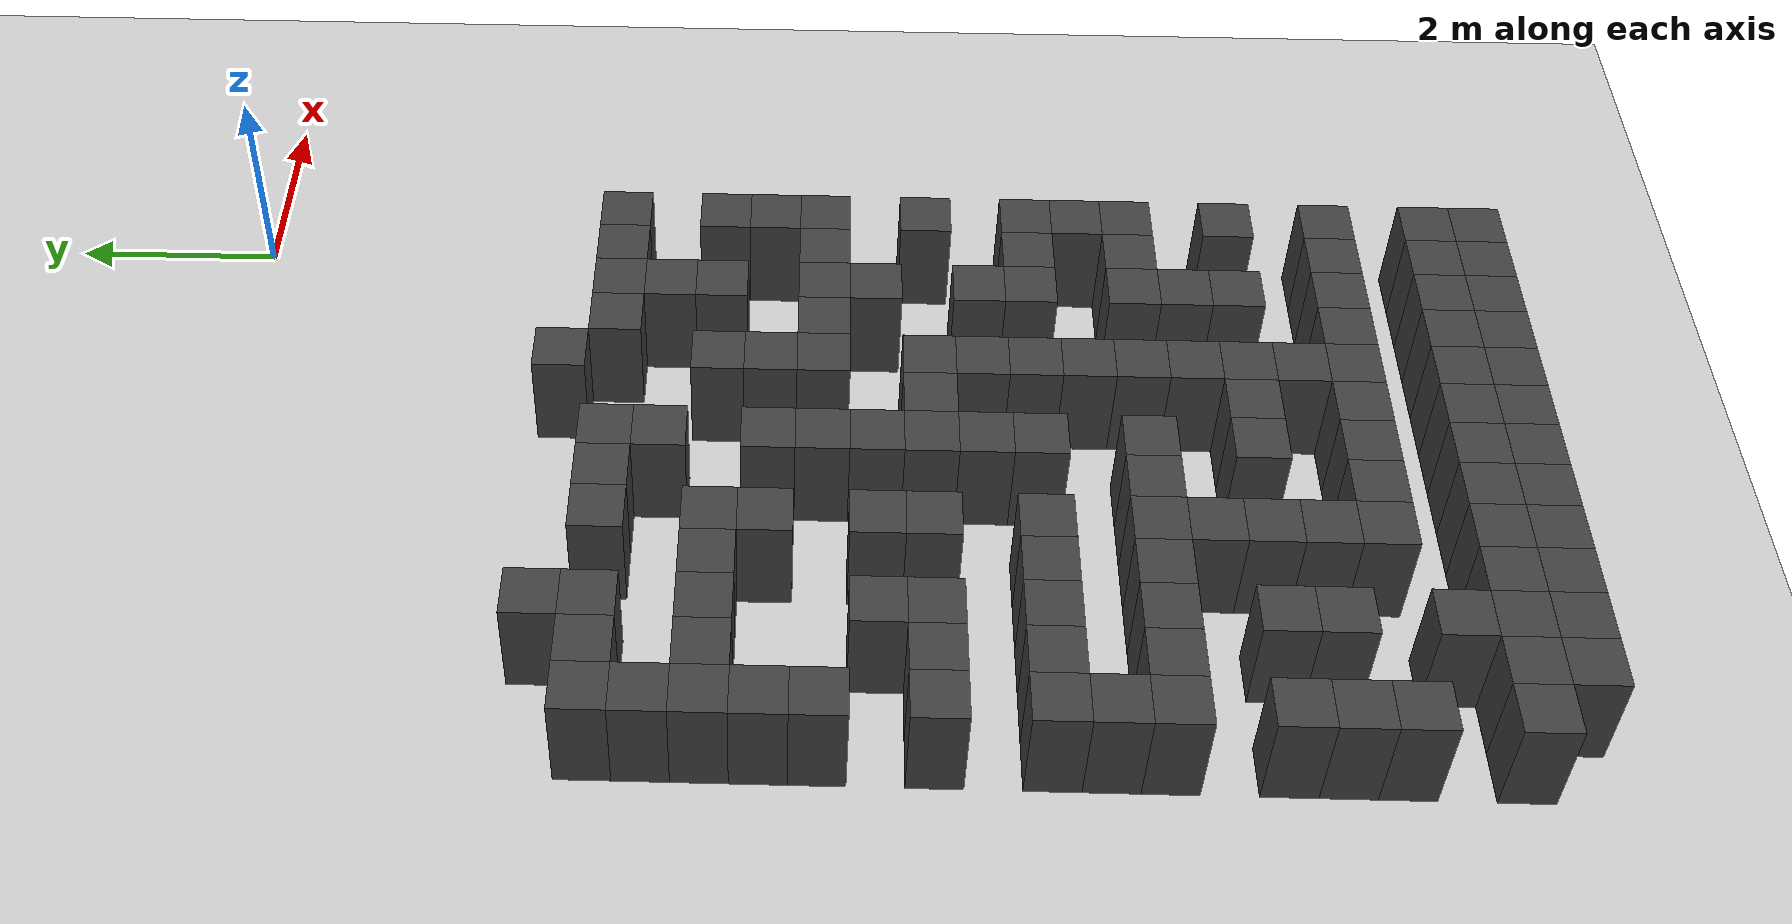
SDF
<sdf version="1.7">
 <world name="map_16668">
  <model name="ground_plane">
   <static>true</static>
   <link name="link">
    <collision name="collision">
     <geometry><plane><normal>0 0 1</normal><size>200 200</size></plane></geometry>
    </collision>
    <visual name="visual">
     <geometry><plane><normal>0 0 1</normal><size>200 200</size></plane></geometry>
     <material><ambient>0.8 0.8 0.8 1</ambient><diffuse>0.8 0.8 0.8 1</diffuse></material>
    </visual>
   </link>
  </model>
  <model name="maze_environment">
   <static>true</static>
   <link name="wall_756">
    <pose>-5.250 -3.250 0.500 0 0 0</pose>
    <collision name="col"><geometry><box><size>0.5 0.5 1.0</size></box></geometry></collision>
    <visual name="vis">
     <geometry><box><size>0.5 0.5 1.0</size></box></geometry>
     <material><ambient>0.15 0.15 0.15 1</ambient><diffuse>0.25 0.25 0.25 1</diffuse></material>
    </visual>
   </link>
   <link name="wall_757">
    <pose>-2.250 -3.250 0.500 0 0 0</pose>
    <collision name="col"><geometry><box><size>0.5 0.5 1.0</size></box></geometry></collision>
    <visual name="vis">
     <geometry><box><size>0.5 0.5 1.0</size></box></geometry>
     <material><ambient>0.15 0.15 0.15 1</ambient><diffuse>0.25 0.25 0.25 1</diffuse></material>
    </visual>
   </link>
   <link name="wall_771">
    <pose>-6.250 -3.750 0.500 0 0 0</pose>
    <collision name="col"><geometry><box><size>0.5 0.5 1.0</size></box></geometry></collision>
    <visual name="vis">
     <geometry><box><size>0.5 0.5 1.0</size></box></geometry>
     <material><ambient>0.15 0.15 0.15 1</ambient><diffuse>0.25 0.25 0.25 1</diffuse></material>
    </visual>
   </link>
   <link name="wall_772">
    <pose>-5.750 -3.750 0.500 0 0 0</pose>
    <collision name="col"><geometry><box><size>0.5 0.5 1.0</size></box></geometry></collision>
    <visual name="vis">
     <geometry><box><size>0.5 0.5 1.0</size></box></geometry>
     <material><ambient>0.15 0.15 0.15 1</ambient><diffuse>0.25 0.25 0.25 1</diffuse></material>
    </visual>
   </link>
   <link name="wall_773">
    <pose>-5.250 -3.750 0.500 0 0 0</pose>
    <collision name="col"><geometry><box><size>0.5 0.5 1.0</size></box></geometry></collision>
    <visual name="vis">
     <geometry><box><size>0.5 0.5 1.0</size></box></geometry>
     <material><ambient>0.15 0.15 0.15 1</ambient><diffuse>0.25 0.25 0.25 1</diffuse></material>
    </visual>
   </link>
   <link name="wall_774">
    <pose>-4.250 -3.750 0.500 0 0 0</pose>
    <collision name="col"><geometry><box><size>0.5 0.5 1.0</size></box></geometry></collision>
    <visual name="vis">
     <geometry><box><size>0.5 0.5 1.0</size></box></geometry>
     <material><ambient>0.15 0.15 0.15 1</ambient><diffuse>0.25 0.25 0.25 1</diffuse></material>
    </visual>
   </link>
   <link name="wall_775">
    <pose>-3.750 -3.750 0.500 0 0 0</pose>
    <collision name="col"><geometry><box><size>0.5 0.5 1.0</size></box></geometry></collision>
    <visual name="vis">
     <geometry><box><size>0.5 0.5 1.0</size></box></geometry>
     <material><ambient>0.15 0.15 0.15 1</ambient><diffuse>0.25 0.25 0.25 1</diffuse></material>
    </visual>
   </link>
   <link name="wall_776">
    <pose>-3.250 -3.750 0.500 0 0 0</pose>
    <collision name="col"><geometry><box><size>0.5 0.5 1.0</size></box></geometry></collision>
    <visual name="vis">
     <geometry><box><size>0.5 0.5 1.0</size></box></geometry>
     <material><ambient>0.15 0.15 0.15 1</ambient><diffuse>0.25 0.25 0.25 1</diffuse></material>
    </visual>
   </link>
   <link name="wall_777">
    <pose>-1.750 -3.750 0.500 0 0 0</pose>
    <collision name="col"><geometry><box><size>0.5 0.5 1.0</size></box></geometry></collision>
    <visual name="vis">
     <geometry><box><size>0.5 0.5 1.0</size></box></geometry>
     <material><ambient>0.15 0.15 0.15 1</ambient><diffuse>0.25 0.25 0.25 1</diffuse></material>
    </visual>
   </link>
   <link name="wall_778">
    <pose>-1.250 -3.750 0.500 0 0 0</pose>
    <collision name="col"><geometry><box><size>0.5 0.5 1.0</size></box></geometry></collision>
    <visual name="vis">
     <geometry><box><size>0.5 0.5 1.0</size></box></geometry>
     <material><ambient>0.15 0.15 0.15 1</ambient><diffuse>0.25 0.25 0.25 1</diffuse></material>
    </visual>
   </link>
   <link name="wall_779">
    <pose>-0.750 -3.750 0.500 0 0 0</pose>
    <collision name="col"><geometry><box><size>0.5 0.5 1.0</size></box></geometry></collision>
    <visual name="vis">
     <geometry><box><size>0.5 0.5 1.0</size></box></geometry>
     <material><ambient>0.15 0.15 0.15 1</ambient><diffuse>0.25 0.25 0.25 1</diffuse></material>
    </visual>
   </link>
   <link name="wall_780">
    <pose>-0.250 -3.750 0.500 0 0 0</pose>
    <collision name="col"><geometry><box><size>0.5 0.5 1.0</size></box></geometry></collision>
    <visual name="vis">
     <geometry><box><size>0.5 0.5 1.0</size></box></geometry>
     <material><ambient>0.15 0.15 0.15 1</ambient><diffuse>0.25 0.25 0.25 1</diffuse></material>
    </visual>
   </link>
   <link name="wall_804">
    <pose>-6.250 -4.250 0.500 0 0 0</pose>
    <collision name="col"><geometry><box><size>0.5 0.5 1.0</size></box></geometry></collision>
    <visual name="vis">
     <geometry><box><size>0.5 0.5 1.0</size></box></geometry>
     <material><ambient>0.15 0.15 0.15 1</ambient><diffuse>0.25 0.25 0.25 1</diffuse></material>
    </visual>
   </link>
   <link name="wall_805">
    <pose>-3.250 -4.250 0.500 0 0 0</pose>
    <collision name="col"><geometry><box><size>0.5 0.5 1.0</size></box></geometry></collision>
    <visual name="vis">
     <geometry><box><size>0.5 0.5 1.0</size></box></geometry>
     <material><ambient>0.15 0.15 0.15 1</ambient><diffuse>0.25 0.25 0.25 1</diffuse></material>
    </visual>
   </link>
   <link name="wall_806">
    <pose>-1.250 -4.250 0.500 0 0 0</pose>
    <collision name="col"><geometry><box><size>0.5 0.5 1.0</size></box></geometry></collision>
    <visual name="vis">
     <geometry><box><size>0.5 0.5 1.0</size></box></geometry>
     <material><ambient>0.15 0.15 0.15 1</ambient><diffuse>0.25 0.25 0.25 1</diffuse></material>
    </visual>
   </link>
   <link name="wall_822">
    <pose>-6.250 -4.750 0.500 0 0 0</pose>
    <collision name="col"><geometry><box><size>0.5 0.5 1.0</size></box></geometry></collision>
    <visual name="vis">
     <geometry><box><size>0.5 0.5 1.0</size></box></geometry>
     <material><ambient>0.15 0.15 0.15 1</ambient><diffuse>0.25 0.25 0.25 1</diffuse></material>
    </visual>
   </link>
   <link name="wall_823">
    <pose>-5.750 -4.750 0.500 0 0 0</pose>
    <collision name="col"><geometry><box><size>0.5 0.5 1.0</size></box></geometry></collision>
    <visual name="vis">
     <geometry><box><size>0.5 0.5 1.0</size></box></geometry>
     <material><ambient>0.15 0.15 0.15 1</ambient><diffuse>0.25 0.25 0.25 1</diffuse></material>
    </visual>
   </link>
   <link name="wall_824">
    <pose>-5.250 -4.750 0.500 0 0 0</pose>
    <collision name="col"><geometry><box><size>0.5 0.5 1.0</size></box></geometry></collision>
    <visual name="vis">
     <geometry><box><size>0.5 0.5 1.0</size></box></geometry>
     <material><ambient>0.15 0.15 0.15 1</ambient><diffuse>0.25 0.25 0.25 1</diffuse></material>
    </visual>
   </link>
   <link name="wall_825">
    <pose>-4.750 -4.750 0.500 0 0 0</pose>
    <collision name="col"><geometry><box><size>0.5 0.5 1.0</size></box></geometry></collision>
    <visual name="vis">
     <geometry><box><size>0.5 0.5 1.0</size></box></geometry>
     <material><ambient>0.15 0.15 0.15 1</ambient><diffuse>0.25 0.25 0.25 1</diffuse></material>
    </visual>
   </link>
   <link name="wall_826">
    <pose>-4.250 -4.750 0.500 0 0 0</pose>
    <collision name="col"><geometry><box><size>0.5 0.5 1.0</size></box></geometry></collision>
    <visual name="vis">
     <geometry><box><size>0.5 0.5 1.0</size></box></geometry>
     <material><ambient>0.15 0.15 0.15 1</ambient><diffuse>0.25 0.25 0.25 1</diffuse></material>
    </visual>
   </link>
   <link name="wall_827">
    <pose>-2.250 -4.750 0.500 0 0 0</pose>
    <collision name="col"><geometry><box><size>0.5 0.5 1.0</size></box></geometry></collision>
    <visual name="vis">
     <geometry><box><size>0.5 0.5 1.0</size></box></geometry>
     <material><ambient>0.15 0.15 0.15 1</ambient><diffuse>0.25 0.25 0.25 1</diffuse></material>
    </visual>
   </link>
   <link name="wall_828">
    <pose>-1.250 -4.750 0.500 0 0 0</pose>
    <collision name="col"><geometry><box><size>0.5 0.5 1.0</size></box></geometry></collision>
    <visual name="vis">
     <geometry><box><size>0.5 0.5 1.0</size></box></geometry>
     <material><ambient>0.15 0.15 0.15 1</ambient><diffuse>0.25 0.25 0.25 1</diffuse></material>
    </visual>
   </link>
   <link name="wall_829">
    <pose>-0.250 -4.750 0.500 0 0 0</pose>
    <collision name="col"><geometry><box><size>0.5 0.5 1.0</size></box></geometry></collision>
    <visual name="vis">
     <geometry><box><size>0.5 0.5 1.0</size></box></geometry>
     <material><ambient>0.15 0.15 0.15 1</ambient><diffuse>0.25 0.25 0.25 1</diffuse></material>
    </visual>
   </link>
   <link name="wall_848">
    <pose>-6.250 -5.250 0.500 0 0 0</pose>
    <collision name="col"><geometry><box><size>0.5 0.5 1.0</size></box></geometry></collision>
    <visual name="vis">
     <geometry><box><size>0.5 0.5 1.0</size></box></geometry>
     <material><ambient>0.15 0.15 0.15 1</ambient><diffuse>0.25 0.25 0.25 1</diffuse></material>
    </visual>
   </link>
   <link name="wall_849">
    <pose>-4.250 -5.250 0.500 0 0 0</pose>
    <collision name="col"><geometry><box><size>0.5 0.5 1.0</size></box></geometry></collision>
    <visual name="vis">
     <geometry><box><size>0.5 0.5 1.0</size></box></geometry>
     <material><ambient>0.15 0.15 0.15 1</ambient><diffuse>0.25 0.25 0.25 1</diffuse></material>
    </visual>
   </link>
   <link name="wall_850">
    <pose>-3.250 -5.250 0.500 0 0 0</pose>
    <collision name="col"><geometry><box><size>0.5 0.5 1.0</size></box></geometry></collision>
    <visual name="vis">
     <geometry><box><size>0.5 0.5 1.0</size></box></geometry>
     <material><ambient>0.15 0.15 0.15 1</ambient><diffuse>0.25 0.25 0.25 1</diffuse></material>
    </visual>
   </link>
   <link name="wall_851">
    <pose>-2.250 -5.250 0.500 0 0 0</pose>
    <collision name="col"><geometry><box><size>0.5 0.5 1.0</size></box></geometry></collision>
    <visual name="vis">
     <geometry><box><size>0.5 0.5 1.0</size></box></geometry>
     <material><ambient>0.15 0.15 0.15 1</ambient><diffuse>0.25 0.25 0.25 1</diffuse></material>
    </visual>
   </link>
   <link name="wall_852">
    <pose>-0.250 -5.250 0.500 0 0 0</pose>
    <collision name="col"><geometry><box><size>0.5 0.5 1.0</size></box></geometry></collision>
    <visual name="vis">
     <geometry><box><size>0.5 0.5 1.0</size></box></geometry>
     <material><ambient>0.15 0.15 0.15 1</ambient><diffuse>0.25 0.25 0.25 1</diffuse></material>
    </visual>
   </link>
   <link name="wall_874">
    <pose>-6.250 -5.750 0.500 0 0 0</pose>
    <collision name="col"><geometry><box><size>0.5 0.5 1.0</size></box></geometry></collision>
    <visual name="vis">
     <geometry><box><size>0.5 0.5 1.0</size></box></geometry>
     <material><ambient>0.15 0.15 0.15 1</ambient><diffuse>0.25 0.25 0.25 1</diffuse></material>
    </visual>
   </link>
   <link name="wall_875">
    <pose>-3.250 -5.750 0.500 0 0 0</pose>
    <collision name="col"><geometry><box><size>0.5 0.5 1.0</size></box></geometry></collision>
    <visual name="vis">
     <geometry><box><size>0.5 0.5 1.0</size></box></geometry>
     <material><ambient>0.15 0.15 0.15 1</ambient><diffuse>0.25 0.25 0.25 1</diffuse></material>
    </visual>
   </link>
   <link name="wall_876">
    <pose>-2.250 -5.750 0.500 0 0 0</pose>
    <collision name="col"><geometry><box><size>0.5 0.5 1.0</size></box></geometry></collision>
    <visual name="vis">
     <geometry><box><size>0.5 0.5 1.0</size></box></geometry>
     <material><ambient>0.15 0.15 0.15 1</ambient><diffuse>0.25 0.25 0.25 1</diffuse></material>
    </visual>
   </link>
   <link name="wall_877">
    <pose>-1.750 -5.750 0.500 0 0 0</pose>
    <collision name="col"><geometry><box><size>0.5 0.5 1.0</size></box></geometry></collision>
    <visual name="vis">
     <geometry><box><size>0.5 0.5 1.0</size></box></geometry>
     <material><ambient>0.15 0.15 0.15 1</ambient><diffuse>0.25 0.25 0.25 1</diffuse></material>
    </visual>
   </link>
   <link name="wall_878">
    <pose>-1.250 -5.750 0.500 0 0 0</pose>
    <collision name="col"><geometry><box><size>0.5 0.5 1.0</size></box></geometry></collision>
    <visual name="vis">
     <geometry><box><size>0.5 0.5 1.0</size></box></geometry>
     <material><ambient>0.15 0.15 0.15 1</ambient><diffuse>0.25 0.25 0.25 1</diffuse></material>
    </visual>
   </link>
   <link name="wall_879">
    <pose>-0.750 -5.750 0.500 0 0 0</pose>
    <collision name="col"><geometry><box><size>0.5 0.5 1.0</size></box></geometry></collision>
    <visual name="vis">
     <geometry><box><size>0.5 0.5 1.0</size></box></geometry>
     <material><ambient>0.15 0.15 0.15 1</ambient><diffuse>0.25 0.25 0.25 1</diffuse></material>
    </visual>
   </link>
   <link name="wall_880">
    <pose>-0.250 -5.750 0.500 0 0 0</pose>
    <collision name="col"><geometry><box><size>0.5 0.5 1.0</size></box></geometry></collision>
    <visual name="vis">
     <geometry><box><size>0.5 0.5 1.0</size></box></geometry>
     <material><ambient>0.15 0.15 0.15 1</ambient><diffuse>0.25 0.25 0.25 1</diffuse></material>
    </visual>
   </link>
   <link name="wall_897">
    <pose>-5.250 -6.250 0.500 0 0 0</pose>
    <collision name="col"><geometry><box><size>0.5 0.5 1.0</size></box></geometry></collision>
    <visual name="vis">
     <geometry><box><size>0.5 0.5 1.0</size></box></geometry>
     <material><ambient>0.15 0.15 0.15 1</ambient><diffuse>0.25 0.25 0.25 1</diffuse></material>
    </visual>
   </link>
   <link name="wall_898">
    <pose>-4.250 -6.250 0.500 0 0 0</pose>
    <collision name="col"><geometry><box><size>0.5 0.5 1.0</size></box></geometry></collision>
    <visual name="vis">
     <geometry><box><size>0.5 0.5 1.0</size></box></geometry>
     <material><ambient>0.15 0.15 0.15 1</ambient><diffuse>0.25 0.25 0.25 1</diffuse></material>
    </visual>
   </link>
   <link name="wall_899">
    <pose>-3.250 -6.250 0.500 0 0 0</pose>
    <collision name="col"><geometry><box><size>0.5 0.5 1.0</size></box></geometry></collision>
    <visual name="vis">
     <geometry><box><size>0.5 0.5 1.0</size></box></geometry>
     <material><ambient>0.15 0.15 0.15 1</ambient><diffuse>0.25 0.25 0.25 1</diffuse></material>
    </visual>
   </link>
   <link name="wall_900">
    <pose>-1.250 -6.250 0.500 0 0 0</pose>
    <collision name="col"><geometry><box><size>0.5 0.5 1.0</size></box></geometry></collision>
    <visual name="vis">
     <geometry><box><size>0.5 0.5 1.0</size></box></geometry>
     <material><ambient>0.15 0.15 0.15 1</ambient><diffuse>0.25 0.25 0.25 1</diffuse></material>
    </visual>
   </link>
   <link name="wall_919">
    <pose>-6.250 -6.750 0.500 0 0 0</pose>
    <collision name="col"><geometry><box><size>0.5 0.5 1.0</size></box></geometry></collision>
    <visual name="vis">
     <geometry><box><size>0.5 0.5 1.0</size></box></geometry>
     <material><ambient>0.15 0.15 0.15 1</ambient><diffuse>0.25 0.25 0.25 1</diffuse></material>
    </visual>
   </link>
   <link name="wall_920">
    <pose>-5.750 -6.750 0.500 0 0 0</pose>
    <collision name="col"><geometry><box><size>0.5 0.5 1.0</size></box></geometry></collision>
    <visual name="vis">
     <geometry><box><size>0.5 0.5 1.0</size></box></geometry>
     <material><ambient>0.15 0.15 0.15 1</ambient><diffuse>0.25 0.25 0.25 1</diffuse></material>
    </visual>
   </link>
   <link name="wall_921">
    <pose>-5.250 -6.750 0.500 0 0 0</pose>
    <collision name="col"><geometry><box><size>0.5 0.5 1.0</size></box></geometry></collision>
    <visual name="vis">
     <geometry><box><size>0.5 0.5 1.0</size></box></geometry>
     <material><ambient>0.15 0.15 0.15 1</ambient><diffuse>0.25 0.25 0.25 1</diffuse></material>
    </visual>
   </link>
   <link name="wall_922">
    <pose>-4.250 -6.750 0.500 0 0 0</pose>
    <collision name="col"><geometry><box><size>0.5 0.5 1.0</size></box></geometry></collision>
    <visual name="vis">
     <geometry><box><size>0.5 0.5 1.0</size></box></geometry>
     <material><ambient>0.15 0.15 0.15 1</ambient><diffuse>0.25 0.25 0.25 1</diffuse></material>
    </visual>
   </link>
   <link name="wall_923">
    <pose>-3.250 -6.750 0.500 0 0 0</pose>
    <collision name="col"><geometry><box><size>0.5 0.5 1.0</size></box></geometry></collision>
    <visual name="vis">
     <geometry><box><size>0.5 0.5 1.0</size></box></geometry>
     <material><ambient>0.15 0.15 0.15 1</ambient><diffuse>0.25 0.25 0.25 1</diffuse></material>
    </visual>
   </link>
   <link name="wall_924">
    <pose>-2.750 -6.750 0.500 0 0 0</pose>
    <collision name="col"><geometry><box><size>0.5 0.5 1.0</size></box></geometry></collision>
    <visual name="vis">
     <geometry><box><size>0.5 0.5 1.0</size></box></geometry>
     <material><ambient>0.15 0.15 0.15 1</ambient><diffuse>0.25 0.25 0.25 1</diffuse></material>
    </visual>
   </link>
   <link name="wall_925">
    <pose>-2.250 -6.750 0.500 0 0 0</pose>
    <collision name="col"><geometry><box><size>0.5 0.5 1.0</size></box></geometry></collision>
    <visual name="vis">
     <geometry><box><size>0.5 0.5 1.0</size></box></geometry>
     <material><ambient>0.15 0.15 0.15 1</ambient><diffuse>0.25 0.25 0.25 1</diffuse></material>
    </visual>
   </link>
   <link name="wall_926">
    <pose>-0.250 -6.750 0.500 0 0 0</pose>
    <collision name="col"><geometry><box><size>0.5 0.5 1.0</size></box></geometry></collision>
    <visual name="vis">
     <geometry><box><size>0.5 0.5 1.0</size></box></geometry>
     <material><ambient>0.15 0.15 0.15 1</ambient><diffuse>0.25 0.25 0.25 1</diffuse></material>
    </visual>
   </link>
   <link name="wall_945">
    <pose>-3.250 -7.250 0.500 0 0 0</pose>
    <collision name="col"><geometry><box><size>0.5 0.5 1.0</size></box></geometry></collision>
    <visual name="vis">
     <geometry><box><size>0.5 0.5 1.0</size></box></geometry>
     <material><ambient>0.15 0.15 0.15 1</ambient><diffuse>0.25 0.25 0.25 1</diffuse></material>
    </visual>
   </link>
   <link name="wall_946">
    <pose>-2.250 -7.250 0.500 0 0 0</pose>
    <collision name="col"><geometry><box><size>0.5 0.5 1.0</size></box></geometry></collision>
    <visual name="vis">
     <geometry><box><size>0.5 0.5 1.0</size></box></geometry>
     <material><ambient>0.15 0.15 0.15 1</ambient><diffuse>0.25 0.25 0.25 1</diffuse></material>
    </visual>
   </link>
   <link name="wall_947">
    <pose>-1.250 -7.250 0.500 0 0 0</pose>
    <collision name="col"><geometry><box><size>0.5 0.5 1.0</size></box></geometry></collision>
    <visual name="vis">
     <geometry><box><size>0.5 0.5 1.0</size></box></geometry>
     <material><ambient>0.15 0.15 0.15 1</ambient><diffuse>0.25 0.25 0.25 1</diffuse></material>
    </visual>
   </link>
   <link name="wall_962">
    <pose>-6.250 -7.750 0.500 0 0 0</pose>
    <collision name="col"><geometry><box><size>0.5 0.5 1.0</size></box></geometry></collision>
    <visual name="vis">
     <geometry><box><size>0.5 0.5 1.0</size></box></geometry>
     <material><ambient>0.15 0.15 0.15 1</ambient><diffuse>0.25 0.25 0.25 1</diffuse></material>
    </visual>
   </link>
   <link name="wall_963">
    <pose>-5.750 -7.750 0.500 0 0 0</pose>
    <collision name="col"><geometry><box><size>0.5 0.5 1.0</size></box></geometry></collision>
    <visual name="vis">
     <geometry><box><size>0.5 0.5 1.0</size></box></geometry>
     <material><ambient>0.15 0.15 0.15 1</ambient><diffuse>0.25 0.25 0.25 1</diffuse></material>
    </visual>
   </link>
   <link name="wall_964">
    <pose>-5.250 -7.750 0.500 0 0 0</pose>
    <collision name="col"><geometry><box><size>0.5 0.5 1.0</size></box></geometry></collision>
    <visual name="vis">
     <geometry><box><size>0.5 0.5 1.0</size></box></geometry>
     <material><ambient>0.15 0.15 0.15 1</ambient><diffuse>0.25 0.25 0.25 1</diffuse></material>
    </visual>
   </link>
   <link name="wall_965">
    <pose>-4.750 -7.750 0.500 0 0 0</pose>
    <collision name="col"><geometry><box><size>0.5 0.5 1.0</size></box></geometry></collision>
    <visual name="vis">
     <geometry><box><size>0.5 0.5 1.0</size></box></geometry>
     <material><ambient>0.15 0.15 0.15 1</ambient><diffuse>0.25 0.25 0.25 1</diffuse></material>
    </visual>
   </link>
   <link name="wall_966">
    <pose>-4.250 -7.750 0.500 0 0 0</pose>
    <collision name="col"><geometry><box><size>0.5 0.5 1.0</size></box></geometry></collision>
    <visual name="vis">
     <geometry><box><size>0.5 0.5 1.0</size></box></geometry>
     <material><ambient>0.15 0.15 0.15 1</ambient><diffuse>0.25 0.25 0.25 1</diffuse></material>
    </visual>
   </link>
   <link name="wall_967">
    <pose>-3.250 -7.750 0.500 0 0 0</pose>
    <collision name="col"><geometry><box><size>0.5 0.5 1.0</size></box></geometry></collision>
    <visual name="vis">
     <geometry><box><size>0.5 0.5 1.0</size></box></geometry>
     <material><ambient>0.15 0.15 0.15 1</ambient><diffuse>0.25 0.25 0.25 1</diffuse></material>
    </visual>
   </link>
   <link name="wall_968">
    <pose>-2.250 -7.750 0.500 0 0 0</pose>
    <collision name="col"><geometry><box><size>0.5 0.5 1.0</size></box></geometry></collision>
    <visual name="vis">
     <geometry><box><size>0.5 0.5 1.0</size></box></geometry>
     <material><ambient>0.15 0.15 0.15 1</ambient><diffuse>0.25 0.25 0.25 1</diffuse></material>
    </visual>
   </link>
   <link name="wall_969">
    <pose>-1.250 -7.750 0.500 0 0 0</pose>
    <collision name="col"><geometry><box><size>0.5 0.5 1.0</size></box></geometry></collision>
    <visual name="vis">
     <geometry><box><size>0.5 0.5 1.0</size></box></geometry>
     <material><ambient>0.15 0.15 0.15 1</ambient><diffuse>0.25 0.25 0.25 1</diffuse></material>
    </visual>
   </link>
   <link name="wall_970">
    <pose>-0.750 -7.750 0.500 0 0 0</pose>
    <collision name="col"><geometry><box><size>0.5 0.5 1.0</size></box></geometry></collision>
    <visual name="vis">
     <geometry><box><size>0.5 0.5 1.0</size></box></geometry>
     <material><ambient>0.15 0.15 0.15 1</ambient><diffuse>0.25 0.25 0.25 1</diffuse></material>
    </visual>
   </link>
   <link name="wall_971">
    <pose>-0.250 -7.750 0.500 0 0 0</pose>
    <collision name="col"><geometry><box><size>0.5 0.5 1.0</size></box></geometry></collision>
    <visual name="vis">
     <geometry><box><size>0.5 0.5 1.0</size></box></geometry>
     <material><ambient>0.15 0.15 0.15 1</ambient><diffuse>0.25 0.25 0.25 1</diffuse></material>
    </visual>
   </link>
   <link name="wall_996">
    <pose>-6.250 -8.250 0.500 0 0 0</pose>
    <collision name="col"><geometry><box><size>0.5 0.5 1.0</size></box></geometry></collision>
    <visual name="vis">
     <geometry><box><size>0.5 0.5 1.0</size></box></geometry>
     <material><ambient>0.15 0.15 0.15 1</ambient><diffuse>0.25 0.25 0.25 1</diffuse></material>
    </visual>
   </link>
   <link name="wall_997">
    <pose>-2.250 -8.250 0.500 0 0 0</pose>
    <collision name="col"><geometry><box><size>0.5 0.5 1.0</size></box></geometry></collision>
    <visual name="vis">
     <geometry><box><size>0.5 0.5 1.0</size></box></geometry>
     <material><ambient>0.15 0.15 0.15 1</ambient><diffuse>0.25 0.25 0.25 1</diffuse></material>
    </visual>
   </link>
   <link name="wall_998">
    <pose>-0.250 -8.250 0.500 0 0 0</pose>
    <collision name="col"><geometry><box><size>0.5 0.5 1.0</size></box></geometry></collision>
    <visual name="vis">
     <geometry><box><size>0.5 0.5 1.0</size></box></geometry>
     <material><ambient>0.15 0.15 0.15 1</ambient><diffuse>0.25 0.25 0.25 1</diffuse></material>
    </visual>
   </link>
   <link name="wall_1011">
    <pose>-6.250 -8.750 0.500 0 0 0</pose>
    <collision name="col"><geometry><box><size>0.5 0.5 1.0</size></box></geometry></collision>
    <visual name="vis">
     <geometry><box><size>0.5 0.5 1.0</size></box></geometry>
     <material><ambient>0.15 0.15 0.15 1</ambient><diffuse>0.25 0.25 0.25 1</diffuse></material>
    </visual>
   </link>
   <link name="wall_1012">
    <pose>-5.750 -8.750 0.500 0 0 0</pose>
    <collision name="col"><geometry><box><size>0.5 0.5 1.0</size></box></geometry></collision>
    <visual name="vis">
     <geometry><box><size>0.5 0.5 1.0</size></box></geometry>
     <material><ambient>0.15 0.15 0.15 1</ambient><diffuse>0.25 0.25 0.25 1</diffuse></material>
    </visual>
   </link>
   <link name="wall_1013">
    <pose>-5.250 -8.750 0.500 0 0 0</pose>
    <collision name="col"><geometry><box><size>0.5 0.5 1.0</size></box></geometry></collision>
    <visual name="vis">
     <geometry><box><size>0.5 0.5 1.0</size></box></geometry>
     <material><ambient>0.15 0.15 0.15 1</ambient><diffuse>0.25 0.25 0.25 1</diffuse></material>
    </visual>
   </link>
   <link name="wall_1014">
    <pose>-4.750 -8.750 0.500 0 0 0</pose>
    <collision name="col"><geometry><box><size>0.5 0.5 1.0</size></box></geometry></collision>
    <visual name="vis">
     <geometry><box><size>0.5 0.5 1.0</size></box></geometry>
     <material><ambient>0.15 0.15 0.15 1</ambient><diffuse>0.25 0.25 0.25 1</diffuse></material>
    </visual>
   </link>
   <link name="wall_1015">
    <pose>-4.250 -8.750 0.500 0 0 0</pose>
    <collision name="col"><geometry><box><size>0.5 0.5 1.0</size></box></geometry></collision>
    <visual name="vis">
     <geometry><box><size>0.5 0.5 1.0</size></box></geometry>
     <material><ambient>0.15 0.15 0.15 1</ambient><diffuse>0.25 0.25 0.25 1</diffuse></material>
    </visual>
   </link>
   <link name="wall_1016">
    <pose>-3.750 -8.750 0.500 0 0 0</pose>
    <collision name="col"><geometry><box><size>0.5 0.5 1.0</size></box></geometry></collision>
    <visual name="vis">
     <geometry><box><size>0.5 0.5 1.0</size></box></geometry>
     <material><ambient>0.15 0.15 0.15 1</ambient><diffuse>0.25 0.25 0.25 1</diffuse></material>
    </visual>
   </link>
   <link name="wall_1017">
    <pose>-3.250 -8.750 0.500 0 0 0</pose>
    <collision name="col"><geometry><box><size>0.5 0.5 1.0</size></box></geometry></collision>
    <visual name="vis">
     <geometry><box><size>0.5 0.5 1.0</size></box></geometry>
     <material><ambient>0.15 0.15 0.15 1</ambient><diffuse>0.25 0.25 0.25 1</diffuse></material>
    </visual>
   </link>
   <link name="wall_1018">
    <pose>-2.250 -8.750 0.500 0 0 0</pose>
    <collision name="col"><geometry><box><size>0.5 0.5 1.0</size></box></geometry></collision>
    <visual name="vis">
     <geometry><box><size>0.5 0.5 1.0</size></box></geometry>
     <material><ambient>0.15 0.15 0.15 1</ambient><diffuse>0.25 0.25 0.25 1</diffuse></material>
    </visual>
   </link>
   <link name="wall_1019">
    <pose>-1.250 -8.750 0.500 0 0 0</pose>
    <collision name="col"><geometry><box><size>0.5 0.5 1.0</size></box></geometry></collision>
    <visual name="vis">
     <geometry><box><size>0.5 0.5 1.0</size></box></geometry>
     <material><ambient>0.15 0.15 0.15 1</ambient><diffuse>0.25 0.25 0.25 1</diffuse></material>
    </visual>
   </link>
   <link name="wall_1020">
    <pose>-0.750 -8.750 0.500 0 0 0</pose>
    <collision name="col"><geometry><box><size>0.5 0.5 1.0</size></box></geometry></collision>
    <visual name="vis">
     <geometry><box><size>0.5 0.5 1.0</size></box></geometry>
     <material><ambient>0.15 0.15 0.15 1</ambient><diffuse>0.25 0.25 0.25 1</diffuse></material>
    </visual>
   </link>
   <link name="wall_1021">
    <pose>-0.250 -8.750 0.500 0 0 0</pose>
    <collision name="col"><geometry><box><size>0.5 0.5 1.0</size></box></geometry></collision>
    <visual name="vis">
     <geometry><box><size>0.5 0.5 1.0</size></box></geometry>
     <material><ambient>0.15 0.15 0.15 1</ambient><diffuse>0.25 0.25 0.25 1</diffuse></material>
    </visual>
   </link>
   <link name="wall_1044">
    <pose>-4.250 -9.250 0.500 0 0 0</pose>
    <collision name="col"><geometry><box><size>0.5 0.5 1.0</size></box></geometry></collision>
    <visual name="vis">
     <geometry><box><size>0.5 0.5 1.0</size></box></geometry>
     <material><ambient>0.15 0.15 0.15 1</ambient><diffuse>0.25 0.25 0.25 1</diffuse></material>
    </visual>
   </link>
   <link name="wall_1045">
    <pose>-2.250 -9.250 0.500 0 0 0</pose>
    <collision name="col"><geometry><box><size>0.5 0.5 1.0</size></box></geometry></collision>
    <visual name="vis">
     <geometry><box><size>0.5 0.5 1.0</size></box></geometry>
     <material><ambient>0.15 0.15 0.15 1</ambient><diffuse>0.25 0.25 0.25 1</diffuse></material>
    </visual>
   </link>
   <link name="wall_1046">
    <pose>-1.250 -9.250 0.500 0 0 0</pose>
    <collision name="col"><geometry><box><size>0.5 0.5 1.0</size></box></geometry></collision>
    <visual name="vis">
     <geometry><box><size>0.5 0.5 1.0</size></box></geometry>
     <material><ambient>0.15 0.15 0.15 1</ambient><diffuse>0.25 0.25 0.25 1</diffuse></material>
    </visual>
   </link>
   <link name="wall_1063">
    <pose>-6.250 -9.750 0.500 0 0 0</pose>
    <collision name="col"><geometry><box><size>0.5 0.5 1.0</size></box></geometry></collision>
    <visual name="vis">
     <geometry><box><size>0.5 0.5 1.0</size></box></geometry>
     <material><ambient>0.15 0.15 0.15 1</ambient><diffuse>0.25 0.25 0.25 1</diffuse></material>
    </visual>
   </link>
   <link name="wall_1064">
    <pose>-5.250 -9.750 0.500 0 0 0</pose>
    <collision name="col"><geometry><box><size>0.5 0.5 1.0</size></box></geometry></collision>
    <visual name="vis">
     <geometry><box><size>0.5 0.5 1.0</size></box></geometry>
     <material><ambient>0.15 0.15 0.15 1</ambient><diffuse>0.25 0.25 0.25 1</diffuse></material>
    </visual>
   </link>
   <link name="wall_1065">
    <pose>-4.250 -9.750 0.500 0 0 0</pose>
    <collision name="col"><geometry><box><size>0.5 0.5 1.0</size></box></geometry></collision>
    <visual name="vis">
     <geometry><box><size>0.5 0.5 1.0</size></box></geometry>
     <material><ambient>0.15 0.15 0.15 1</ambient><diffuse>0.25 0.25 0.25 1</diffuse></material>
    </visual>
   </link>
   <link name="wall_1066">
    <pose>-3.250 -9.750 0.500 0 0 0</pose>
    <collision name="col"><geometry><box><size>0.5 0.5 1.0</size></box></geometry></collision>
    <visual name="vis">
     <geometry><box><size>0.5 0.5 1.0</size></box></geometry>
     <material><ambient>0.15 0.15 0.15 1</ambient><diffuse>0.25 0.25 0.25 1</diffuse></material>
    </visual>
   </link>
   <link name="wall_1067">
    <pose>-2.750 -9.750 0.500 0 0 0</pose>
    <collision name="col"><geometry><box><size>0.5 0.5 1.0</size></box></geometry></collision>
    <visual name="vis">
     <geometry><box><size>0.5 0.5 1.0</size></box></geometry>
     <material><ambient>0.15 0.15 0.15 1</ambient><diffuse>0.25 0.25 0.25 1</diffuse></material>
    </visual>
   </link>
   <link name="wall_1068">
    <pose>-2.250 -9.750 0.500 0 0 0</pose>
    <collision name="col"><geometry><box><size>0.5 0.5 1.0</size></box></geometry></collision>
    <visual name="vis">
     <geometry><box><size>0.5 0.5 1.0</size></box></geometry>
     <material><ambient>0.15 0.15 0.15 1</ambient><diffuse>0.25 0.25 0.25 1</diffuse></material>
    </visual>
   </link>
   <link name="wall_1069">
    <pose>-1.250 -9.750 0.500 0 0 0</pose>
    <collision name="col"><geometry><box><size>0.5 0.5 1.0</size></box></geometry></collision>
    <visual name="vis">
     <geometry><box><size>0.5 0.5 1.0</size></box></geometry>
     <material><ambient>0.15 0.15 0.15 1</ambient><diffuse>0.25 0.25 0.25 1</diffuse></material>
    </visual>
   </link>
   <link name="wall_1070">
    <pose>-0.250 -9.750 0.500 0 0 0</pose>
    <collision name="col"><geometry><box><size>0.5 0.5 1.0</size></box></geometry></collision>
    <visual name="vis">
     <geometry><box><size>0.5 0.5 1.0</size></box></geometry>
     <material><ambient>0.15 0.15 0.15 1</ambient><diffuse>0.25 0.25 0.25 1</diffuse></material>
    </visual>
   </link>
   <link name="wall_1092">
    <pose>-6.250 -10.250 0.500 0 0 0</pose>
    <collision name="col"><geometry><box><size>0.5 0.5 1.0</size></box></geometry></collision>
    <visual name="vis">
     <geometry><box><size>0.5 0.5 1.0</size></box></geometry>
     <material><ambient>0.15 0.15 0.15 1</ambient><diffuse>0.25 0.25 0.25 1</diffuse></material>
    </visual>
   </link>
   <link name="wall_1093">
    <pose>-5.250 -10.250 0.500 0 0 0</pose>
    <collision name="col"><geometry><box><size>0.5 0.5 1.0</size></box></geometry></collision>
    <visual name="vis">
     <geometry><box><size>0.5 0.5 1.0</size></box></geometry>
     <material><ambient>0.15 0.15 0.15 1</ambient><diffuse>0.25 0.25 0.25 1</diffuse></material>
    </visual>
   </link>
   <link name="wall_1094">
    <pose>-4.250 -10.250 0.500 0 0 0</pose>
    <collision name="col"><geometry><box><size>0.5 0.5 1.0</size></box></geometry></collision>
    <visual name="vis">
     <geometry><box><size>0.5 0.5 1.0</size></box></geometry>
     <material><ambient>0.15 0.15 0.15 1</ambient><diffuse>0.25 0.25 0.25 1</diffuse></material>
    </visual>
   </link>
   <link name="wall_1095">
    <pose>-2.250 -10.250 0.500 0 0 0</pose>
    <collision name="col"><geometry><box><size>0.5 0.5 1.0</size></box></geometry></collision>
    <visual name="vis">
     <geometry><box><size>0.5 0.5 1.0</size></box></geometry>
     <material><ambient>0.15 0.15 0.15 1</ambient><diffuse>0.25 0.25 0.25 1</diffuse></material>
    </visual>
   </link>
   <link name="wall_1112">
    <pose>-6.250 -10.750 0.500 0 0 0</pose>
    <collision name="col"><geometry><box><size>0.5 0.5 1.0</size></box></geometry></collision>
    <visual name="vis">
     <geometry><box><size>0.5 0.5 1.0</size></box></geometry>
     <material><ambient>0.15 0.15 0.15 1</ambient><diffuse>0.25 0.25 0.25 1</diffuse></material>
    </visual>
   </link>
   <link name="wall_1113">
    <pose>-4.250 -10.750 0.500 0 0 0</pose>
    <collision name="col"><geometry><box><size>0.5 0.5 1.0</size></box></geometry></collision>
    <visual name="vis">
     <geometry><box><size>0.5 0.5 1.0</size></box></geometry>
     <material><ambient>0.15 0.15 0.15 1</ambient><diffuse>0.25 0.25 0.25 1</diffuse></material>
    </visual>
   </link>
   <link name="wall_1114">
    <pose>-3.750 -10.750 0.500 0 0 0</pose>
    <collision name="col"><geometry><box><size>0.5 0.5 1.0</size></box></geometry></collision>
    <visual name="vis">
     <geometry><box><size>0.5 0.5 1.0</size></box></geometry>
     <material><ambient>0.15 0.15 0.15 1</ambient><diffuse>0.25 0.25 0.25 1</diffuse></material>
    </visual>
   </link>
   <link name="wall_1115">
    <pose>-3.250 -10.750 0.500 0 0 0</pose>
    <collision name="col"><geometry><box><size>0.5 0.5 1.0</size></box></geometry></collision>
    <visual name="vis">
     <geometry><box><size>0.5 0.5 1.0</size></box></geometry>
     <material><ambient>0.15 0.15 0.15 1</ambient><diffuse>0.25 0.25 0.25 1</diffuse></material>
    </visual>
   </link>
   <link name="wall_1116">
    <pose>-2.750 -10.750 0.500 0 0 0</pose>
    <collision name="col"><geometry><box><size>0.5 0.5 1.0</size></box></geometry></collision>
    <visual name="vis">
     <geometry><box><size>0.5 0.5 1.0</size></box></geometry>
     <material><ambient>0.15 0.15 0.15 1</ambient><diffuse>0.25 0.25 0.25 1</diffuse></material>
    </visual>
   </link>
   <link name="wall_1117">
    <pose>-2.250 -10.750 0.500 0 0 0</pose>
    <collision name="col"><geometry><box><size>0.5 0.5 1.0</size></box></geometry></collision>
    <visual name="vis">
     <geometry><box><size>0.5 0.5 1.0</size></box></geometry>
     <material><ambient>0.15 0.15 0.15 1</ambient><diffuse>0.25 0.25 0.25 1</diffuse></material>
    </visual>
   </link>
   <link name="wall_1118">
    <pose>-1.750 -10.750 0.500 0 0 0</pose>
    <collision name="col"><geometry><box><size>0.5 0.5 1.0</size></box></geometry></collision>
    <visual name="vis">
     <geometry><box><size>0.5 0.5 1.0</size></box></geometry>
     <material><ambient>0.15 0.15 0.15 1</ambient><diffuse>0.25 0.25 0.25 1</diffuse></material>
    </visual>
   </link>
   <link name="wall_1119">
    <pose>-1.250 -10.750 0.500 0 0 0</pose>
    <collision name="col"><geometry><box><size>0.5 0.5 1.0</size></box></geometry></collision>
    <visual name="vis">
     <geometry><box><size>0.5 0.5 1.0</size></box></geometry>
     <material><ambient>0.15 0.15 0.15 1</ambient><diffuse>0.25 0.25 0.25 1</diffuse></material>
    </visual>
   </link>
   <link name="wall_1120">
    <pose>-0.750 -10.750 0.500 0 0 0</pose>
    <collision name="col"><geometry><box><size>0.5 0.5 1.0</size></box></geometry></collision>
    <visual name="vis">
     <geometry><box><size>0.5 0.5 1.0</size></box></geometry>
     <material><ambient>0.15 0.15 0.15 1</ambient><diffuse>0.25 0.25 0.25 1</diffuse></material>
    </visual>
   </link>
   <link name="wall_1121">
    <pose>-0.250 -10.750 0.500 0 0 0</pose>
    <collision name="col"><geometry><box><size>0.5 0.5 1.0</size></box></geometry></collision>
    <visual name="vis">
     <geometry><box><size>0.5 0.5 1.0</size></box></geometry>
     <material><ambient>0.15 0.15 0.15 1</ambient><diffuse>0.25 0.25 0.25 1</diffuse></material>
    </visual>
   </link>
   <link name="wall_1143">
    <pose>-5.250 -11.250 0.500 0 0 0</pose>
    <collision name="col"><geometry><box><size>0.5 0.5 1.0</size></box></geometry></collision>
    <visual name="vis">
     <geometry><box><size>0.5 0.5 1.0</size></box></geometry>
     <material><ambient>0.15 0.15 0.15 1</ambient><diffuse>0.25 0.25 0.25 1</diffuse></material>
    </visual>
   </link>
   <link name="wall_1159">
    <pose>-6.250 -11.750 0.500 0 0 0</pose>
    <collision name="col"><geometry><box><size>0.5 0.5 1.0</size></box></geometry></collision>
    <visual name="vis">
     <geometry><box><size>0.5 0.5 1.0</size></box></geometry>
     <material><ambient>0.15 0.15 0.15 1</ambient><diffuse>0.25 0.25 0.25 1</diffuse></material>
    </visual>
   </link>
   <link name="wall_1160">
    <pose>-5.750 -11.750 0.500 0 0 0</pose>
    <collision name="col"><geometry><box><size>0.5 0.5 1.0</size></box></geometry></collision>
    <visual name="vis">
     <geometry><box><size>0.5 0.5 1.0</size></box></geometry>
     <material><ambient>0.15 0.15 0.15 1</ambient><diffuse>0.25 0.25 0.25 1</diffuse></material>
    </visual>
   </link>
   <link name="wall_1161">
    <pose>-5.250 -11.750 0.500 0 0 0</pose>
    <collision name="col"><geometry><box><size>0.5 0.5 1.0</size></box></geometry></collision>
    <visual name="vis">
     <geometry><box><size>0.5 0.5 1.0</size></box></geometry>
     <material><ambient>0.15 0.15 0.15 1</ambient><diffuse>0.25 0.25 0.25 1</diffuse></material>
    </visual>
   </link>
   <link name="wall_1162">
    <pose>-4.750 -11.750 0.500 0 0 0</pose>
    <collision name="col"><geometry><box><size>0.5 0.5 1.0</size></box></geometry></collision>
    <visual name="vis">
     <geometry><box><size>0.5 0.5 1.0</size></box></geometry>
     <material><ambient>0.15 0.15 0.15 1</ambient><diffuse>0.25 0.25 0.25 1</diffuse></material>
    </visual>
   </link>
   <link name="wall_1163">
    <pose>-4.250 -11.750 0.500 0 0 0</pose>
    <collision name="col"><geometry><box><size>0.5 0.5 1.0</size></box></geometry></collision>
    <visual name="vis">
     <geometry><box><size>0.5 0.5 1.0</size></box></geometry>
     <material><ambient>0.15 0.15 0.15 1</ambient><diffuse>0.25 0.25 0.25 1</diffuse></material>
    </visual>
   </link>
   <link name="wall_1164">
    <pose>-3.750 -11.750 0.500 0 0 0</pose>
    <collision name="col"><geometry><box><size>0.5 0.5 1.0</size></box></geometry></collision>
    <visual name="vis">
     <geometry><box><size>0.5 0.5 1.0</size></box></geometry>
     <material><ambient>0.15 0.15 0.15 1</ambient><diffuse>0.25 0.25 0.25 1</diffuse></material>
    </visual>
   </link>
   <link name="wall_1165">
    <pose>-3.250 -11.750 0.500 0 0 0</pose>
    <collision name="col"><geometry><box><size>0.5 0.5 1.0</size></box></geometry></collision>
    <visual name="vis">
     <geometry><box><size>0.5 0.5 1.0</size></box></geometry>
     <material><ambient>0.15 0.15 0.15 1</ambient><diffuse>0.25 0.25 0.25 1</diffuse></material>
    </visual>
   </link>
   <link name="wall_1166">
    <pose>-2.750 -11.750 0.500 0 0 0</pose>
    <collision name="col"><geometry><box><size>0.5 0.5 1.0</size></box></geometry></collision>
    <visual name="vis">
     <geometry><box><size>0.5 0.5 1.0</size></box></geometry>
     <material><ambient>0.15 0.15 0.15 1</ambient><diffuse>0.25 0.25 0.25 1</diffuse></material>
    </visual>
   </link>
   <link name="wall_1167">
    <pose>-2.250 -11.750 0.500 0 0 0</pose>
    <collision name="col"><geometry><box><size>0.5 0.5 1.0</size></box></geometry></collision>
    <visual name="vis">
     <geometry><box><size>0.5 0.5 1.0</size></box></geometry>
     <material><ambient>0.15 0.15 0.15 1</ambient><diffuse>0.25 0.25 0.25 1</diffuse></material>
    </visual>
   </link>
   <link name="wall_1168">
    <pose>-1.750 -11.750 0.500 0 0 0</pose>
    <collision name="col"><geometry><box><size>0.5 0.5 1.0</size></box></geometry></collision>
    <visual name="vis">
     <geometry><box><size>0.5 0.5 1.0</size></box></geometry>
     <material><ambient>0.15 0.15 0.15 1</ambient><diffuse>0.25 0.25 0.25 1</diffuse></material>
    </visual>
   </link>
   <link name="wall_1169">
    <pose>-1.250 -11.750 0.500 0 0 0</pose>
    <collision name="col"><geometry><box><size>0.5 0.5 1.0</size></box></geometry></collision>
    <visual name="vis">
     <geometry><box><size>0.5 0.5 1.0</size></box></geometry>
     <material><ambient>0.15 0.15 0.15 1</ambient><diffuse>0.25 0.25 0.25 1</diffuse></material>
    </visual>
   </link>
   <link name="wall_1170">
    <pose>-0.750 -11.750 0.500 0 0 0</pose>
    <collision name="col"><geometry><box><size>0.5 0.5 1.0</size></box></geometry></collision>
    <visual name="vis">
     <geometry><box><size>0.5 0.5 1.0</size></box></geometry>
     <material><ambient>0.15 0.15 0.15 1</ambient><diffuse>0.25 0.25 0.25 1</diffuse></material>
    </visual>
   </link>
   <link name="wall_1171">
    <pose>-0.250 -11.750 0.500 0 0 0</pose>
    <collision name="col"><geometry><box><size>0.5 0.5 1.0</size></box></geometry></collision>
    <visual name="vis">
     <geometry><box><size>0.5 0.5 1.0</size></box></geometry>
     <material><ambient>0.15 0.15 0.15 1</ambient><diffuse>0.25 0.25 0.25 1</diffuse></material>
    </visual>
   </link>
   <link name="wall_1208">
    <pose>-5.750 -12.250 0.500 0 0 0</pose>
    <collision name="col"><geometry><box><size>0.5 0.5 1.0</size></box></geometry></collision>
    <visual name="vis">
     <geometry><box><size>0.5 0.5 1.0</size></box></geometry>
     <material><ambient>0.15 0.15 0.15 1</ambient><diffuse>0.25 0.25 0.25 1</diffuse></material>
    </visual>
   </link>
   <link name="wall_1209">
    <pose>-5.250 -12.250 0.500 0 0 0</pose>
    <collision name="col"><geometry><box><size>0.5 0.5 1.0</size></box></geometry></collision>
    <visual name="vis">
     <geometry><box><size>0.5 0.5 1.0</size></box></geometry>
     <material><ambient>0.15 0.15 0.15 1</ambient><diffuse>0.25 0.25 0.25 1</diffuse></material>
    </visual>
   </link>
   <link name="wall_1210">
    <pose>-4.750 -12.250 0.500 0 0 0</pose>
    <collision name="col"><geometry><box><size>0.5 0.5 1.0</size></box></geometry></collision>
    <visual name="vis">
     <geometry><box><size>0.5 0.5 1.0</size></box></geometry>
     <material><ambient>0.15 0.15 0.15 1</ambient><diffuse>0.25 0.25 0.25 1</diffuse></material>
    </visual>
   </link>
   <link name="wall_1211">
    <pose>-4.250 -12.250 0.500 0 0 0</pose>
    <collision name="col"><geometry><box><size>0.5 0.5 1.0</size></box></geometry></collision>
    <visual name="vis">
     <geometry><box><size>0.5 0.5 1.0</size></box></geometry>
     <material><ambient>0.15 0.15 0.15 1</ambient><diffuse>0.25 0.25 0.25 1</diffuse></material>
    </visual>
   </link>
   <link name="wall_1212">
    <pose>-3.750 -12.250 0.500 0 0 0</pose>
    <collision name="col"><geometry><box><size>0.5 0.5 1.0</size></box></geometry></collision>
    <visual name="vis">
     <geometry><box><size>0.5 0.5 1.0</size></box></geometry>
     <material><ambient>0.15 0.15 0.15 1</ambient><diffuse>0.25 0.25 0.25 1</diffuse></material>
    </visual>
   </link>
   <link name="wall_1213">
    <pose>-3.250 -12.250 0.500 0 0 0</pose>
    <collision name="col"><geometry><box><size>0.5 0.5 1.0</size></box></geometry></collision>
    <visual name="vis">
     <geometry><box><size>0.5 0.5 1.0</size></box></geometry>
     <material><ambient>0.15 0.15 0.15 1</ambient><diffuse>0.25 0.25 0.25 1</diffuse></material>
    </visual>
   </link>
   <link name="wall_1214">
    <pose>-2.750 -12.250 0.500 0 0 0</pose>
    <collision name="col"><geometry><box><size>0.5 0.5 1.0</size></box></geometry></collision>
    <visual name="vis">
     <geometry><box><size>0.5 0.5 1.0</size></box></geometry>
     <material><ambient>0.15 0.15 0.15 1</ambient><diffuse>0.25 0.25 0.25 1</diffuse></material>
    </visual>
   </link>
   <link name="wall_1215">
    <pose>-2.250 -12.250 0.500 0 0 0</pose>
    <collision name="col"><geometry><box><size>0.5 0.5 1.0</size></box></geometry></collision>
    <visual name="vis">
     <geometry><box><size>0.5 0.5 1.0</size></box></geometry>
     <material><ambient>0.15 0.15 0.15 1</ambient><diffuse>0.25 0.25 0.25 1</diffuse></material>
    </visual>
   </link>
   <link name="wall_1216">
    <pose>-1.750 -12.250 0.500 0 0 0</pose>
    <collision name="col"><geometry><box><size>0.5 0.5 1.0</size></box></geometry></collision>
    <visual name="vis">
     <geometry><box><size>0.5 0.5 1.0</size></box></geometry>
     <material><ambient>0.15 0.15 0.15 1</ambient><diffuse>0.25 0.25 0.25 1</diffuse></material>
    </visual>
   </link>
   <link name="wall_1217">
    <pose>-1.250 -12.250 0.500 0 0 0</pose>
    <collision name="col"><geometry><box><size>0.5 0.5 1.0</size></box></geometry></collision>
    <visual name="vis">
     <geometry><box><size>0.5 0.5 1.0</size></box></geometry>
     <material><ambient>0.15 0.15 0.15 1</ambient><diffuse>0.25 0.25 0.25 1</diffuse></material>
    </visual>
   </link>
   <link name="wall_1218">
    <pose>-0.750 -12.250 0.500 0 0 0</pose>
    <collision name="col"><geometry><box><size>0.5 0.5 1.0</size></box></geometry></collision>
    <visual name="vis">
     <geometry><box><size>0.5 0.5 1.0</size></box></geometry>
     <material><ambient>0.15 0.15 0.15 1</ambient><diffuse>0.25 0.25 0.25 1</diffuse></material>
    </visual>
   </link>
   <link name="wall_1219">
    <pose>-0.250 -12.250 0.500 0 0 0</pose>
    <collision name="col"><geometry><box><size>0.5 0.5 1.0</size></box></geometry></collision>
    <visual name="vis">
     <geometry><box><size>0.5 0.5 1.0</size></box></geometry>
     <material><ambient>0.15 0.15 0.15 1</ambient><diffuse>0.25 0.25 0.25 1</diffuse></material>
    </visual>
   </link>
  </model>
 </world>
</sdf>
